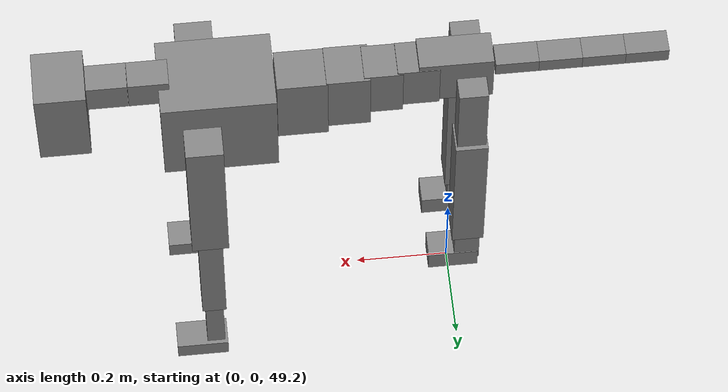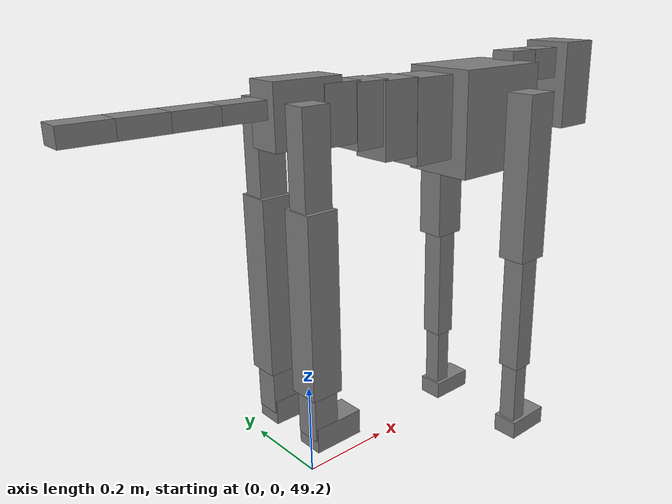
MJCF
<mujoco model="dog">

    <default>
        <joint armature="0.02" stiffness="1" damping="0.2" limited="true"/>
        <geom condim="3" friction="1 0.05 0.05" margin="0.01"/>
        <motor ctrllimited="true" ctrlrange="-1.0 1.0" forcelimited="true" gear="50"/>
    </default>

    <compiler inertiafromgeom="true" angle="radian"/>

    <option timestep="0.016" iterations="50" tolerance="1e-10" solver="Newton" jacobian="dense" cone="pyramidal"/>

    <size nconmax="20000" njmax="60000" nstack="5000000"/>
    <visual>
        <map force="0.1" zfar="30"/>
        <rgba haze="0.15 0.25 0.35 1"/>
        <quality shadowsize="2048"/>
        <global offwidth="800" offheight="800"/>
    </visual>

    <asset>
        <texture type="skybox" builtin="gradient" rgb1="0.3 0.5 0.7" rgb2="0 0 0" width="512" height="512"/>
        <texture name="texplane" type="2d" builtin="checker" rgb1=".2 .3 .4" rgb2=".1 0.15 0.2" width="512" height="512"
                 mark="cross" markrgb=".8 .8 .8"/>
        <texture name="texgeom" type="cube" builtin="flat" mark="cross" width="127" height="1278" rgb1="0.8 0.6 0.4"
                 rgb2="0.8 0.6 0.4" markrgb="1 1 1" random="0.01"/>

        <material name="matplane" reflectance="0.3" texture="texplane" texrepeat="1 1" texuniform="true"/>
        <material name="matgeom" texture="texgeom" texuniform="true" rgba="0.8 0.6 .4 1"/>
    </asset>

    <worldbody>
        <geom name="floor" pos="0 0 0" size="0 0 .25" type="plane" material="matplane" condim="3"/>

        <light directional="false" diffuse=".2 .2 .2" specular="0 0 0" pos="0 0 5" dir="0 0 -1" castshadow="false"/>
        <light mode="targetbodycom" target="torso" directional="false" diffuse=".8 .8 .8" specular="0.3 0.3 0.3"
               pos="0 0 4.0" dir="0 0 -1"/>

        <body name="root" pos="0 0 50">
            <freejoint name="root_1"/>
            <geom type="box" pos="0 0 -0.02" size="0.0774  0.0358  0.063" density="2030"/>

            <body name="spine1" pos="0.054 0 0">
                <joint name="spine1_y" axis="0 1 0" range="0 0.7" limited="true"/>
                <geom type="box" pos="0.02375 0 -0.03" size="0.04375  0.0375  0.05985" density="2030"/>

                <body name="spine2" pos="0.0612 0 0">
                    <joint name="spine2_y" axis="0 1 0" range="-0.15 0.15" limited="true"/>
                    <geom type="box" pos="0.03555  0  -0.04" size="0.04055  0.039  0.06615" density="2030"/>

                    <body name="spine3" pos="0.0730 0 0">
                        <joint name="spine3_y" axis="0 1 0" range="-0.15 0.15" limited="true"/>
                        <geom type="box" pos="0.03555  0  -0.057" size="0.04555  0.0445  0.081" density="2030"/>

                        <body name="spine4" pos="0.0780 0 0">
                            <joint name="spine4_y" axis="0 1 0" range="-0.15 0.15" limited="true"/>
                            <geom type="box" pos="0.05265  0  -0.07" size="0.05265  0.045  0.09135" density="2030"/>

                            <body name="torso" pos="0.1082 0 0">
                                <joint name="torso_y" axis="0 1 0" range="-0.15 0.15" limited="true"/>
                                <geom type="box" pos="0.11925  0  -0.085" size="0.11925  0.085  0.11745"
                                      density="2030"/>

                                <body name="neck1" pos="0.2160  0   0.0180">
                                    <joint name="neck1_y" axis="0 1 0" range="-1.2  -1" limited="true"/>
                                    <geom type="box" pos="0.0423  0  0" size="0.0423  0.03  0.036" density="2325"/>

                                    <body name="neck2" pos="0.0853  0  0">
                                        <joint name="neck2_y" axis="0 1 0" range="0.1  0" limited="true"/>
                                        <geom type="box" pos="0.0423  0  0" size="0.0423  0.03  0.036" density="2325"/>

                                        <body name="head" pos="0.0853  0  0">
                                            <joint name="head_y" axis="0 1 0" range="-0.3  -0.2" limited="true"/>
                                            <geom type="box" pos="0.0531  0  -0.055" size="0.0531  0.06  0.1044"
                                                  density="4030"/>

                                        </body>
                                    </body>
                                </body>

                                <body name="front_shoulder" pos="0.156  0   -0.0480">
                                    <joint name="front_shoulder_y" axis="0 1 0" range="-1 1.5" limited="true"/>
                                    <geom type="box" pos="0 0.13 -0.1655" size="0.0392  0.0335  0.1921" density="1158"/>
                                    <geom type="box" pos="0 -0.13 -0.1655" size="0.0392  0.0335  0.1921"
                                          density="1158"/>

                                    <body name="front_elbow" pos="0  0  -0.3309">
                                        <joint name="front_elbow_y" axis="0 1 0" range="-2 0" limited="true"/>
                                        <geom type="box" pos="0 0.13 -0.1541" size="0.0261  0.0266  0.1541"
                                              density="1081"/>
                                        <geom type="box" pos="0 -0.13 -0.1541" size="0.0261  0.0266  0.1541"
                                              density="1081"/>

                                        <body name="front_wrist" pos="0  0  -0.3082">
                                            <joint name="front_wrist_y" axis="0 1 0" range="-0.2 0" limited="true"/>
                                            <geom type="box" pos="0 0.13 -0.0804" size="0.0196  0.0217  0.0936"
                                                  density="1664"/>
                                            <geom type="box" pos="0 -0.13 -0.0804" size="0.0196  0.0217  0.0936"
                                                  density="1664"/>

                                            <body name="front_finger_end" pos="0  0  -0.1609">
                                                <joint name="front_finger_y" axis="0 1 0" range="-0.4 1"
                                                       limited="true"/>
                                                <geom type="box" pos="0.0307  0.13  -0.0068"
                                                      size="0.0563  0.0307  0.0218" density="1515"/>
                                                <geom type="box" pos="0.0307  -0.13  -0.0068"
                                                      size="0.0563  0.0307  0.0218" density="1515"/>

                                            </body>

                                        </body>
                                    </body>
                                </body>

                            </body>
                        </body>
                    </body>
                </body>
            </body>

            <body name="back_hip" pos="-0.03 0 -0.018">
                <joint name="back_hip_y" axis="0 1 0" range="-1.5 0.3" limited="true"/>
                <geom type="box" pos="0 0.07 -0.0918" size="0.0305  0.0239  0.1146" density="1154"/>
                <geom type="box" pos="0 -0.07 -0.0918" size="0.0305  0.0239  0.1146" density="1154"/>

                <body name="back_knee" pos="0  0  -0.1836">
                    <joint name="back_knee_y" axis="0 1 0" range="0 2.8" limited="true"/>
                    <geom type="box" pos="0 0.07 -0.1718" size="0.0343  0.0338  0.1874" density="1227"/>
                    <geom type="box" pos="0 -0.07 -0.1718" size="0.0343  0.0338  0.1874" density="1227"/>

                    <body name="back_ankle" pos="0  0  -0.3436">
                        <joint name="back_ankle_y" axis="0 1 0" range="-2.2 0" limited="true"/>
                        <geom type="box" pos="0 0.07 -0.0489" size="0.0272  0.0272  0.0602" density="1284"/>
                        <geom type="box" pos="0 -0.07 -0.0489" size="0.0272  0.0272  0.0602" density="1284"/>

                        <body name="back_toe_end" pos="0  0  -0.0978">
                            <joint name="back_toe_y" axis="0 1 0" range="-0.4 1" limited="true"/>
                            <geom type="box" pos="0.0294  0.07  -0.0113" size="0.0539  0.0294  0.0263" density="1515"/>
                            <geom type="box" pos="0.0294  -0.07  -0.0113" size="0.0539  0.0294  0.0263" density="1515"/>

                        </body>
                    </body>
                </body>
            </body>

            <body name="tail1" pos="-0.074 0 -0.006">
                <joint name="tail1_y" axis="0 1 0" range="-0.2 0.2" limited="true"/>
                <geom type="box" pos="-0.0536  0  0" size="0.045  0.025  0.0175" density="1587"/>

                <body name="tail2" pos="-0.09 0 0">
                    <joint name="tail2_y" axis="0 1 0" range="-0.2 0.2" limited="true"/>
                    <geom type="box" pos="-0.0536  0  0" size="0.045  0.025  0.0175" density="1587"/>

                    <body name="tail3" pos="-0.09 0 0">
                        <joint name="tail3_y" axis="0 1 0" range="-0.2 0.2" limited="true"/>
                        <geom type="box" pos="-0.0536  0  0" size="0.045  0.025  0.0175" density="1587"/>

                        <body name="tail4" pos="-0.09 0 0">
                            <joint name="tail4_y" axis="0 1 0" range="-0.2 0.2" limited="true"/>
                            <geom type="box" pos="-0.0536  0  0" size="0.045  0.025  0.0175" density="1587"/>

                        </body>
                    </body>
                </body>
            </body>
        </body>
    </worldbody>

    <actuator>
        <motor joint="spine1_y" forcerange="-150 150     "/>
        <motor joint="spine2_y" forcerange="-150 150     "/>
        <motor joint="spine3_y" forcerange="-150 150     "/>
        <motor joint="spine4_y" forcerange="-150 150     "/>
        <motor joint="torso_y" forcerange="-150 150     "/>
        <motor joint="neck1_y" forcerange="-100 100       "/>
        <motor joint="neck2_y" forcerange="-100 100       "/>
        <motor joint="head_y" forcerange="-150 150       "/>
        <motor joint="front_shoulder_y" forcerange="-159.35 163.92"/>
        <motor joint="front_elbow_y" forcerange="-114.49 179.23"/>
        <motor joint="front_wrist_y" forcerange="-69.56 104.41"/>
        <motor joint="front_finger_y" forcerange="-37.93 85.97"/>
        <motor joint="back_hip_y" forcerange="-232.18 286.56"/>
        <motor joint="back_knee_y" forcerange="-353.64 338.63"/>
        <motor joint="back_angle_y" forcerange="-164.50 171.38"/>
        <motor joint="back_toe_y" forcerange="-74.59 80.52"/>
        <motor joint="tail1_y" forcerange="-50 50     "/>
        <motor joint="tail2_y" forcerange="-50 50     "/>
        <motor joint="tail3_y" forcerange="-50 50     "/>
        <motor joint="tail4_y" forcerange="-50 50     "/>
    </actuator>
</mujoco>
